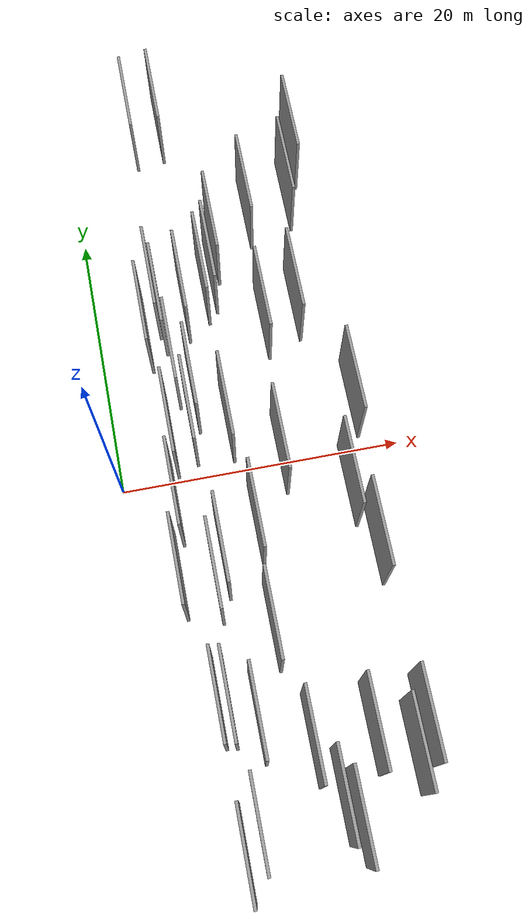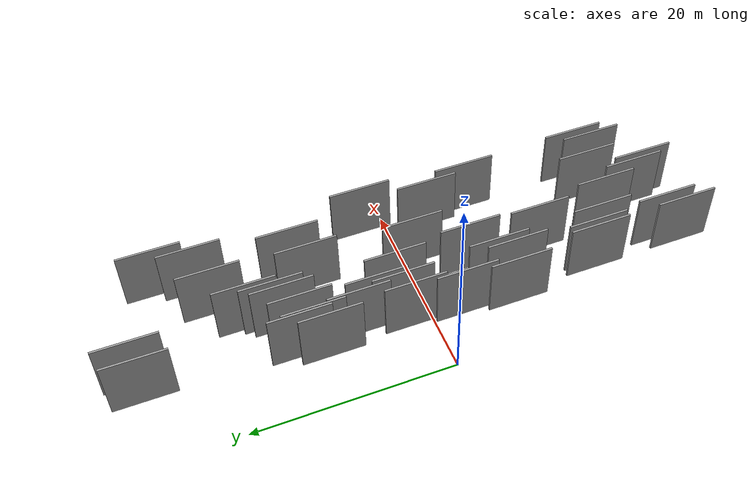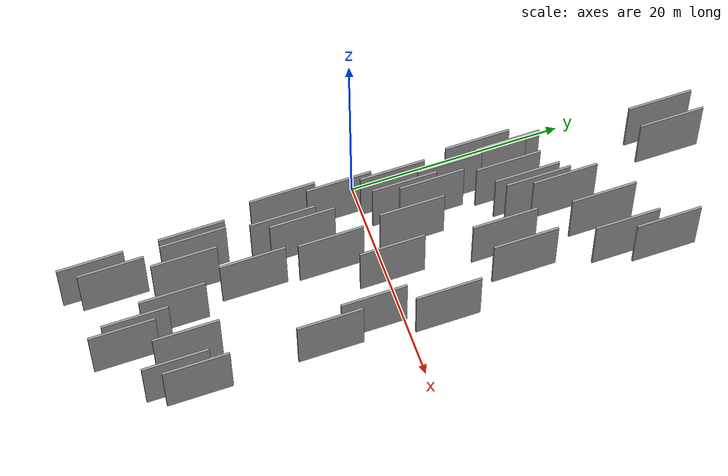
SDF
<sdf version="1.6">
 <world name="default">
  <scene>
   <sky><clouds><speed>12</speed></clouds></sky>
   <ambient>0.4 0.4 0.4 1</ambient>
   <background>0.7 0.7 0.7 1</background>
   <shadows>1</shadows>
  </scene>
  <gravity>0 0 -9.8066</gravity>
  <magnetic_field>6e-06 2.3e-05 -4.2e-05</magnetic_field>
  <physics default="0" name="default_physics" type="ode">
   <ode>
    <solver>
     <type>quick</type>
     <iters>10</iters>
     <sor>1.0</sor>
     <use_dynamic_moi_rescaling>0</use_dynamic_moi_rescaling>
    </solver>
    <constraints>
     <cfm>0</cfm>
     <erp>0.2</erp>
     <contact_max_correcting_vel>100</contact_max_correcting_vel>
     <contact_surface_layer>0.001</contact_surface_layer>
    </constraints>
   </ode>
   <max_step_size>0.004</max_step_size>
   <real_time_factor>1</real_time_factor>
   <real_time_update_rate>250</real_time_update_rate>
  </physics>
  <light name="sun" type="directional">
   <pose>0 0 10 0 0 0</pose>
   <diffuse>0.8 0.8 0.8 1</diffuse>
   <specular>0.2 0.2 0.2 1</specular>
   <attenuation>
    <range>1000</range>
    <constant>0.9</constant>
    <linear>0.01</linear>
    <quadratic>0.001</quadratic>
   </attenuation>
   <direction>-0.5 0.1 -0.9</direction>
  </light>
  <model name="grey_wall_1">
   <static>1</static>
   <pose>9.5216 16.7080 2.5 0.000000 0.000000 1.570796</pose>
   <link name="link">
    <pose>0 0 3.00 0 0 0</pose>
    <collision name="collision"><geometry><box><size>6.00 0.2 6.00</size></box></geometry></collision>
    <visual name="visual">
     <cast_shadows>0</cast_shadows>
     <geometry><box><size>6.00 0.2 6.00</size></box></geometry>
     <material>
      <script>
       <uri>model://grey_wall/materials/scripts</uri>
       <uri>model://grey_wall/materials/textures</uri>
       <name>vrc/grey_wall</name>
      </script>
     </material>
    </visual>
   </link>
  </model>
  <model name="grey_wall_2">
   <static>1</static>
   <pose>6.0941 -6.5864 2.5 0.000000 0.000000 1.570796</pose>
   <link name="link">
    <pose>0 0 3.00 0 0 0</pose>
    <collision name="collision"><geometry><box><size>6.00 0.2 6.00</size></box></geometry></collision>
    <visual name="visual">
     <cast_shadows>0</cast_shadows>
     <geometry><box><size>6.00 0.2 6.00</size></box></geometry>
     <material>
      <script>
       <uri>model://grey_wall/materials/scripts</uri>
       <uri>model://grey_wall/materials/textures</uri>
       <name>vrc/grey_wall</name>
      </script>
     </material>
    </visual>
   </link>
  </model>
  <model name="grey_wall_3">
   <static>1</static>
   <pose>15.6950 -21.0629 2.5 0.000000 0.000000 1.570796</pose>
   <link name="link">
    <pose>0 0 3.00 0 0 0</pose>
    <collision name="collision"><geometry><box><size>6.00 0.2 6.00</size></box></geometry></collision>
    <visual name="visual">
     <cast_shadows>0</cast_shadows>
     <geometry><box><size>6.00 0.2 6.00</size></box></geometry>
     <material>
      <script>
       <uri>model://grey_wall/materials/scripts</uri>
       <uri>model://grey_wall/materials/textures</uri>
       <name>vrc/grey_wall</name>
      </script>
     </material>
    </visual>
   </link>
  </model>
  <model name="grey_wall_4">
   <static>1</static>
   <pose>3.6308 10.6178 2.5 0.000000 0.000000 1.570796</pose>
   <link name="link">
    <pose>0 0 3.00 0 0 0</pose>
    <collision name="collision"><geometry><box><size>6.00 0.2 6.00</size></box></geometry></collision>
    <visual name="visual">
     <cast_shadows>0</cast_shadows>
     <geometry><box><size>6.00 0.2 6.00</size></box></geometry>
     <material>
      <script>
       <uri>model://grey_wall/materials/scripts</uri>
       <uri>model://grey_wall/materials/textures</uri>
       <name>vrc/grey_wall</name>
      </script>
     </material>
    </visual>
   </link>
  </model>
  <model name="grey_wall_5">
   <static>1</static>
   <pose>7.1737 27.8074 2.5 0.000000 0.000000 1.570796</pose>
   <link name="link">
    <pose>0 0 3.00 0 0 0</pose>
    <collision name="collision"><geometry><box><size>6.00 0.2 6.00</size></box></geometry></collision>
    <visual name="visual">
     <cast_shadows>0</cast_shadows>
     <geometry><box><size>6.00 0.2 6.00</size></box></geometry>
     <material>
      <script>
       <uri>model://grey_wall/materials/scripts</uri>
       <uri>model://grey_wall/materials/textures</uri>
       <name>vrc/grey_wall</name>
      </script>
     </material>
    </visual>
   </link>
  </model>
  <model name="grey_wall_6">
   <static>1</static>
   <pose>5.5750 3.0882 2.5 0.000000 0.000000 1.570796</pose>
   <link name="link">
    <pose>0 0 3.00 0 0 0</pose>
    <collision name="collision"><geometry><box><size>6.00 0.2 6.00</size></box></geometry></collision>
    <visual name="visual">
     <cast_shadows>0</cast_shadows>
     <geometry><box><size>6.00 0.2 6.00</size></box></geometry>
     <material>
      <script>
       <uri>model://grey_wall/materials/scripts</uri>
       <uri>model://grey_wall/materials/textures</uri>
       <name>vrc/grey_wall</name>
      </script>
     </material>
    </visual>
   </link>
  </model>
  <model name="grey_wall_7">
   <static>1</static>
   <pose>11.2782 -0.0539 2.5 0.000000 0.000000 1.570796</pose>
   <link name="link">
    <pose>0 0 3.00 0 0 0</pose>
    <collision name="collision"><geometry><box><size>6.00 0.2 6.00</size></box></geometry></collision>
    <visual name="visual">
     <cast_shadows>0</cast_shadows>
     <geometry><box><size>6.00 0.2 6.00</size></box></geometry>
     <material>
      <script>
       <uri>model://grey_wall/materials/scripts</uri>
       <uri>model://grey_wall/materials/textures</uri>
       <name>vrc/grey_wall</name>
      </script>
     </material>
    </visual>
   </link>
  </model>
  <model name="grey_wall_8">
   <static>1</static>
   <pose>9.4758 -19.4449 2.5 0.000000 0.000000 1.570796</pose>
   <link name="link">
    <pose>0 0 3.00 0 0 0</pose>
    <collision name="collision"><geometry><box><size>6.00 0.2 6.00</size></box></geometry></collision>
    <visual name="visual">
     <cast_shadows>0</cast_shadows>
     <geometry><box><size>6.00 0.2 6.00</size></box></geometry>
     <material>
      <script>
       <uri>model://grey_wall/materials/scripts</uri>
       <uri>model://grey_wall/materials/textures</uri>
       <name>vrc/grey_wall</name>
      </script>
     </material>
    </visual>
   </link>
  </model>
  <model name="grey_wall_9">
   <static>1</static>
   <pose>6.6198 12.4533 2.5 0.000000 0.000000 1.570796</pose>
   <link name="link">
    <pose>0 0 3.00 0 0 0</pose>
    <collision name="collision"><geometry><box><size>6.00 0.2 6.00</size></box></geometry></collision>
    <visual name="visual">
     <cast_shadows>0</cast_shadows>
     <geometry><box><size>6.00 0.2 6.00</size></box></geometry>
     <material>
      <script>
       <uri>model://grey_wall/materials/scripts</uri>
       <uri>model://grey_wall/materials/textures</uri>
       <name>vrc/grey_wall</name>
      </script>
     </material>
    </visual>
   </link>
  </model>
  <model name="grey_wall_10">
   <static>1</static>
   <pose>16.9489 3.0974 2.5 0.000000 0.000000 1.570796</pose>
   <link name="link">
    <pose>0 0 3.00 0 0 0</pose>
    <collision name="collision"><geometry><box><size>6.00 0.2 6.00</size></box></geometry></collision>
    <visual name="visual">
     <cast_shadows>0</cast_shadows>
     <geometry><box><size>6.00 0.2 6.00</size></box></geometry>
     <material>
      <script>
       <uri>model://grey_wall/materials/scripts</uri>
       <uri>model://grey_wall/materials/textures</uri>
       <name>vrc/grey_wall</name>
      </script>
     </material>
    </visual>
   </link>
  </model>
  <model name="grey_wall_11">
   <static>1</static>
   <pose>12.0115 10.1252 2.5 0.000000 0.000000 1.570796</pose>
   <link name="link">
    <pose>0 0 3.00 0 0 0</pose>
    <collision name="collision"><geometry><box><size>6.00 0.2 6.00</size></box></geometry></collision>
    <visual name="visual">
     <cast_shadows>0</cast_shadows>
     <geometry><box><size>6.00 0.2 6.00</size></box></geometry>
     <material>
      <script>
       <uri>model://grey_wall/materials/scripts</uri>
       <uri>model://grey_wall/materials/textures</uri>
       <name>vrc/grey_wall</name>
      </script>
     </material>
    </visual>
   </link>
  </model>
  <model name="grey_wall_12">
   <static>1</static>
   <pose>16.3393 -7.4817 2.5 0.000000 0.000000 1.570796</pose>
   <link name="link">
    <pose>0 0 3.00 0 0 0</pose>
    <collision name="collision"><geometry><box><size>6.00 0.2 6.00</size></box></geometry></collision>
    <visual name="visual">
     <cast_shadows>0</cast_shadows>
     <geometry><box><size>6.00 0.2 6.00</size></box></geometry>
     <material>
      <script>
       <uri>model://grey_wall/materials/scripts</uri>
       <uri>model://grey_wall/materials/textures</uri>
       <name>vrc/grey_wall</name>
      </script>
     </material>
    </visual>
   </link>
  </model>
  <model name="grey_wall_13">
   <static>1</static>
   <pose>4.1173 2.4645 2.5 0.000000 0.000000 1.570796</pose>
   <link name="link">
    <pose>0 0 3.00 0 0 0</pose>
    <collision name="collision"><geometry><box><size>6.00 0.2 6.00</size></box></geometry></collision>
    <visual name="visual">
     <cast_shadows>0</cast_shadows>
     <geometry><box><size>6.00 0.2 6.00</size></box></geometry>
     <material>
      <script>
       <uri>model://grey_wall/materials/scripts</uri>
       <uri>model://grey_wall/materials/textures</uri>
       <name>vrc/grey_wall</name>
      </script>
     </material>
    </visual>
   </link>
  </model>
  <model name="grey_wall_14">
   <static>1</static>
   <pose>12.4123 19.2364 2.5 0.000000 0.000000 1.570796</pose>
   <link name="link">
    <pose>0 0 3.00 0 0 0</pose>
    <collision name="collision"><geometry><box><size>6.00 0.2 6.00</size></box></geometry></collision>
    <visual name="visual">
     <cast_shadows>0</cast_shadows>
     <geometry><box><size>6.00 0.2 6.00</size></box></geometry>
     <material>
      <script>
       <uri>model://grey_wall/materials/scripts</uri>
       <uri>model://grey_wall/materials/textures</uri>
       <name>vrc/grey_wall</name>
      </script>
     </material>
    </visual>
   </link>
  </model>
  <model name="grey_wall_15">
   <static>1</static>
   <pose>11.3765 -24.5055 2.5 0.000000 0.000000 1.570796</pose>
   <link name="link">
    <pose>0 0 3.00 0 0 0</pose>
    <collision name="collision"><geometry><box><size>6.00 0.2 6.00</size></box></geometry></collision>
    <visual name="visual">
     <cast_shadows>0</cast_shadows>
     <geometry><box><size>6.00 0.2 6.00</size></box></geometry>
     <material>
      <script>
       <uri>model://grey_wall/materials/scripts</uri>
       <uri>model://grey_wall/materials/textures</uri>
       <name>vrc/grey_wall</name>
      </script>
     </material>
    </visual>
   </link>
  </model>
  <model name="grey_wall_16">
   <static>1</static>
   <pose>13.3270 -19.3992 2.5 0.000000 0.000000 1.570796</pose>
   <link name="link">
    <pose>0 0 3.00 0 0 0</pose>
    <collision name="collision"><geometry><box><size>6.00 0.2 6.00</size></box></geometry></collision>
    <visual name="visual">
     <cast_shadows>0</cast_shadows>
     <geometry><box><size>6.00 0.2 6.00</size></box></geometry>
     <material>
      <script>
       <uri>model://grey_wall/materials/scripts</uri>
       <uri>model://grey_wall/materials/textures</uri>
       <name>vrc/grey_wall</name>
      </script>
     </material>
    </visual>
   </link>
  </model>
  <model name="grey_wall_17">
   <static>1</static>
   <pose>4.1915 -25.2556 2.5 0.000000 0.000000 1.570796</pose>
   <link name="link">
    <pose>0 0 3.00 0 0 0</pose>
    <collision name="collision"><geometry><box><size>6.00 0.2 6.00</size></box></geometry></collision>
    <visual name="visual">
     <cast_shadows>0</cast_shadows>
     <geometry><box><size>6.00 0.2 6.00</size></box></geometry>
     <material>
      <script>
       <uri>model://grey_wall/materials/scripts</uri>
       <uri>model://grey_wall/materials/textures</uri>
       <name>vrc/grey_wall</name>
      </script>
     </material>
    </visual>
   </link>
  </model>
  <model name="grey_wall_18">
   <static>1</static>
   <pose>4.1256 -16.0557 2.5 0.000000 0.000000 1.570796</pose>
   <link name="link">
    <pose>0 0 3.00 0 0 0</pose>
    <collision name="collision"><geometry><box><size>6.00 0.2 6.00</size></box></geometry></collision>
    <visual name="visual">
     <cast_shadows>0</cast_shadows>
     <geometry><box><size>6.00 0.2 6.00</size></box></geometry>
     <material>
      <script>
       <uri>model://grey_wall/materials/scripts</uri>
       <uri>model://grey_wall/materials/textures</uri>
       <name>vrc/grey_wall</name>
      </script>
     </material>
    </visual>
   </link>
  </model>
  <model name="grey_wall_19">
   <static>1</static>
   <pose>8.4395 -11.8730 2.5 0.000000 0.000000 1.570796</pose>
   <link name="link">
    <pose>0 0 3.00 0 0 0</pose>
    <collision name="collision"><geometry><box><size>6.00 0.2 6.00</size></box></geometry></collision>
    <visual name="visual">
     <cast_shadows>0</cast_shadows>
     <geometry><box><size>6.00 0.2 6.00</size></box></geometry>
     <material>
      <script>
       <uri>model://grey_wall/materials/scripts</uri>
       <uri>model://grey_wall/materials/textures</uri>
       <name>vrc/grey_wall</name>
      </script>
     </material>
    </visual>
   </link>
  </model>
  <model name="grey_wall_20">
   <static>1</static>
   <pose>5.0960 7.4938 2.5 0.000000 0.000000 1.570796</pose>
   <link name="link">
    <pose>0 0 3.00 0 0 0</pose>
    <collision name="collision"><geometry><box><size>6.00 0.2 6.00</size></box></geometry></collision>
    <visual name="visual">
     <cast_shadows>0</cast_shadows>
     <geometry><box><size>6.00 0.2 6.00</size></box></geometry>
     <material>
      <script>
       <uri>model://grey_wall/materials/scripts</uri>
       <uri>model://grey_wall/materials/textures</uri>
       <name>vrc/grey_wall</name>
      </script>
     </material>
    </visual>
   </link>
  </model>
  <model name="grey_wall_21">
   <static>1</static>
   <pose>4.5917 13.1310 2.5 0.000000 0.000000 1.570796</pose>
   <link name="link">
    <pose>0 0 3.00 0 0 0</pose>
    <collision name="collision"><geometry><box><size>6.00 0.2 6.00</size></box></geometry></collision>
    <visual name="visual">
     <cast_shadows>0</cast_shadows>
     <geometry><box><size>6.00 0.2 6.00</size></box></geometry>
     <material>
      <script>
       <uri>model://grey_wall/materials/scripts</uri>
       <uri>model://grey_wall/materials/textures</uri>
       <name>vrc/grey_wall</name>
      </script>
     </material>
    </visual>
   </link>
  </model>
  <model name="grey_wall_22">
   <static>1</static>
   <pose>15.4603 -3.1970 2.5 0.000000 0.000000 1.570796</pose>
   <link name="link">
    <pose>0 0 3.00 0 0 0</pose>
    <collision name="collision"><geometry><box><size>6.00 0.2 6.00</size></box></geometry></collision>
    <visual name="visual">
     <cast_shadows>0</cast_shadows>
     <geometry><box><size>6.00 0.2 6.00</size></box></geometry>
     <material>
      <script>
       <uri>model://grey_wall/materials/scripts</uri>
       <uri>model://grey_wall/materials/textures</uri>
       <name>vrc/grey_wall</name>
      </script>
     </material>
    </visual>
   </link>
  </model>
  <model name="grey_wall_23">
   <static>1</static>
   <pose>8.7132 -4.8242 2.5 0.000000 0.000000 1.570796</pose>
   <link name="link">
    <pose>0 0 3.00 0 0 0</pose>
    <collision name="collision"><geometry><box><size>6.00 0.2 6.00</size></box></geometry></collision>
    <visual name="visual">
     <cast_shadows>0</cast_shadows>
     <geometry><box><size>6.00 0.2 6.00</size></box></geometry>
     <material>
      <script>
       <uri>model://grey_wall/materials/scripts</uri>
       <uri>model://grey_wall/materials/textures</uri>
       <name>vrc/grey_wall</name>
      </script>
     </material>
    </visual>
   </link>
  </model>
  <model name="grey_wall_24">
   <static>1</static>
   <pose>4.7884 -16.1540 2.5 0.000000 0.000000 1.570796</pose>
   <link name="link">
    <pose>0 0 3.00 0 0 0</pose>
    <collision name="collision"><geometry><box><size>6.00 0.2 6.00</size></box></geometry></collision>
    <visual name="visual">
     <cast_shadows>0</cast_shadows>
     <geometry><box><size>6.00 0.2 6.00</size></box></geometry>
     <material>
      <script>
       <uri>model://grey_wall/materials/scripts</uri>
       <uri>model://grey_wall/materials/textures</uri>
       <name>vrc/grey_wall</name>
      </script>
     </material>
    </visual>
   </link>
  </model>
  <model name="grey_wall_25">
   <static>1</static>
   <pose>5.3555 -8.1354 2.5 0.000000 0.000000 1.570796</pose>
   <link name="link">
    <pose>0 0 3.00 0 0 0</pose>
    <collision name="collision"><geometry><box><size>6.00 0.2 6.00</size></box></geometry></collision>
    <visual name="visual">
     <cast_shadows>0</cast_shadows>
     <geometry><box><size>6.00 0.2 6.00</size></box></geometry>
     <material>
      <script>
       <uri>model://grey_wall/materials/scripts</uri>
       <uri>model://grey_wall/materials/textures</uri>
       <name>vrc/grey_wall</name>
      </script>
     </material>
    </visual>
   </link>
  </model>
  <model name="grey_wall_26">
   <static>1</static>
   <pose>8.1038 2.8939 2.5 0.000000 0.000000 1.570796</pose>
   <link name="link">
    <pose>0 0 3.00 0 0 0</pose>
    <collision name="collision"><geometry><box><size>6.00 0.2 6.00</size></box></geometry></collision>
    <visual name="visual">
     <cast_shadows>0</cast_shadows>
     <geometry><box><size>6.00 0.2 6.00</size></box></geometry>
     <material>
      <script>
       <uri>model://grey_wall/materials/scripts</uri>
       <uri>model://grey_wall/materials/textures</uri>
       <name>vrc/grey_wall</name>
      </script>
     </material>
    </visual>
   </link>
  </model>
  <model name="grey_wall_27">
   <static>1</static>
   <pose>4.8388 11.7817 2.5 0.000000 0.000000 1.570796</pose>
   <link name="link">
    <pose>0 0 3.00 0 0 0</pose>
    <collision name="collision"><geometry><box><size>6.00 0.2 6.00</size></box></geometry></collision>
    <visual name="visual">
     <cast_shadows>0</cast_shadows>
     <geometry><box><size>6.00 0.2 6.00</size></box></geometry>
     <material>
      <script>
       <uri>model://grey_wall/materials/scripts</uri>
       <uri>model://grey_wall/materials/textures</uri>
       <name>vrc/grey_wall</name>
      </script>
     </material>
    </visual>
   </link>
  </model>
  <model name="grey_wall_28">
   <static>1</static>
   <pose>8.9540 14.4108 2.5 0.000000 0.000000 1.570796</pose>
   <link name="link">
    <pose>0 0 3.00 0 0 0</pose>
    <collision name="collision"><geometry><box><size>6.00 0.2 6.00</size></box></geometry></collision>
    <visual name="visual">
     <cast_shadows>0</cast_shadows>
     <geometry><box><size>6.00 0.2 6.00</size></box></geometry>
     <material>
      <script>
       <uri>model://grey_wall/materials/scripts</uri>
       <uri>model://grey_wall/materials/textures</uri>
       <name>vrc/grey_wall</name>
      </script>
     </material>
    </visual>
   </link>
  </model>
  <model name="grey_wall_29">
   <static>1</static>
   <pose>6.4015 -17.4471 2.5 0.000000 0.000000 1.570796</pose>
   <link name="link">
    <pose>0 0 3.00 0 0 0</pose>
    <collision name="collision"><geometry><box><size>6.00 0.2 6.00</size></box></geometry></collision>
    <visual name="visual">
     <cast_shadows>0</cast_shadows>
     <geometry><box><size>6.00 0.2 6.00</size></box></geometry>
     <material>
      <script>
       <uri>model://grey_wall/materials/scripts</uri>
       <uri>model://grey_wall/materials/textures</uri>
       <name>vrc/grey_wall</name>
      </script>
     </material>
    </visual>
   </link>
  </model>
  <model name="grey_wall_30">
   <static>1</static>
   <pose>5.1383 27.5080 2.5 0.000000 0.000000 1.570796</pose>
   <link name="link">
    <pose>0 0 3.00 0 0 0</pose>
    <collision name="collision"><geometry><box><size>6.00 0.2 6.00</size></box></geometry></collision>
    <visual name="visual">
     <cast_shadows>0</cast_shadows>
     <geometry><box><size>6.00 0.2 6.00</size></box></geometry>
     <material>
      <script>
       <uri>model://grey_wall/materials/scripts</uri>
       <uri>model://grey_wall/materials/textures</uri>
       <name>vrc/grey_wall</name>
      </script>
     </material>
    </visual>
   </link>
  </model>
  <model name="grey_wall_31">
   <static>1</static>
   <pose>16.6461 23.6377 2.5 0.000000 0.000000 1.570796</pose>
   <link name="link">
    <pose>0 0 3.00 0 0 0</pose>
    <collision name="collision"><geometry><box><size>6.00 0.2 6.00</size></box></geometry></collision>
    <visual name="visual">
     <cast_shadows>0</cast_shadows>
     <geometry><box><size>6.00 0.2 6.00</size></box></geometry>
     <material>
      <script>
       <uri>model://grey_wall/materials/scripts</uri>
       <uri>model://grey_wall/materials/textures</uri>
       <name>vrc/grey_wall</name>
      </script>
     </material>
    </visual>
   </link>
  </model>
  <model name="grey_wall_32">
   <static>1</static>
   <pose>8.2579 13.6173 2.5 0.000000 0.000000 1.570796</pose>
   <link name="link">
    <pose>0 0 3.00 0 0 0</pose>
    <collision name="collision"><geometry><box><size>6.00 0.2 6.00</size></box></geometry></collision>
    <visual name="visual">
     <cast_shadows>0</cast_shadows>
     <geometry><box><size>6.00 0.2 6.00</size></box></geometry>
     <material>
      <script>
       <uri>model://grey_wall/materials/scripts</uri>
       <uri>model://grey_wall/materials/textures</uri>
       <name>vrc/grey_wall</name>
      </script>
     </material>
    </visual>
   </link>
  </model>
  <model name="grey_wall_33">
   <static>1</static>
   <pose>15.6154 20.1854 2.5 0.000000 0.000000 1.570796</pose>
   <link name="link">
    <pose>0 0 3.00 0 0 0</pose>
    <collision name="collision"><geometry><box><size>6.00 0.2 6.00</size></box></geometry></collision>
    <visual name="visual">
     <cast_shadows>0</cast_shadows>
     <geometry><box><size>6.00 0.2 6.00</size></box></geometry>
     <material>
      <script>
       <uri>model://grey_wall/materials/scripts</uri>
       <uri>model://grey_wall/materials/textures</uri>
       <name>vrc/grey_wall</name>
      </script>
     </material>
    </visual>
   </link>
  </model>
  <model name="grey_wall_34">
   <static>1</static>
   <pose>16.6260 -19.5157 2.5 0.000000 0.000000 1.570796</pose>
   <link name="link">
    <pose>0 0 3.00 0 0 0</pose>
    <collision name="collision"><geometry><box><size>6.00 0.2 6.00</size></box></geometry></collision>
    <visual name="visual">
     <cast_shadows>0</cast_shadows>
     <geometry><box><size>6.00 0.2 6.00</size></box></geometry>
     <material>
      <script>
       <uri>model://grey_wall/materials/scripts</uri>
       <uri>model://grey_wall/materials/textures</uri>
       <name>vrc/grey_wall</name>
      </script>
     </material>
    </visual>
   </link>
  </model>
  <model name="grey_wall_35">
   <static>1</static>
   <pose>6.1271 5.4344 2.5 0.000000 0.000000 1.570796</pose>
   <link name="link">
    <pose>0 0 3.00 0 0 0</pose>
    <collision name="collision"><geometry><box><size>6.00 0.2 6.00</size></box></geometry></collision>
    <visual name="visual">
     <cast_shadows>0</cast_shadows>
     <geometry><box><size>6.00 0.2 6.00</size></box></geometry>
     <material>
      <script>
       <uri>model://grey_wall/materials/scripts</uri>
       <uri>model://grey_wall/materials/textures</uri>
       <name>vrc/grey_wall</name>
      </script>
     </material>
    </visual>
   </link>
  </model>
  <model name="grey_wall_36">
   <static>1</static>
   <pose>3.0910 -7.4250 2.5 0.000000 0.000000 1.570796</pose>
   <link name="link">
    <pose>0 0 3.00 0 0 0</pose>
    <collision name="collision"><geometry><box><size>6.00 0.2 6.00</size></box></geometry></collision>
    <visual name="visual">
     <cast_shadows>0</cast_shadows>
     <geometry><box><size>6.00 0.2 6.00</size></box></geometry>
     <material>
      <script>
       <uri>model://grey_wall/materials/scripts</uri>
       <uri>model://grey_wall/materials/textures</uri>
       <name>vrc/grey_wall</name>
      </script>
     </material>
    </visual>
   </link>
  </model>
  <model name="grey_wall_37">
   <static>1</static>
   <pose>5.2783 -23.7277 2.5 0.000000 0.000000 1.570796</pose>
   <link name="link">
    <pose>0 0 3.00 0 0 0</pose>
    <collision name="collision"><geometry><box><size>6.00 0.2 6.00</size></box></geometry></collision>
    <visual name="visual">
     <cast_shadows>0</cast_shadows>
     <geometry><box><size>6.00 0.2 6.00</size></box></geometry>
     <material>
      <script>
       <uri>model://grey_wall/materials/scripts</uri>
       <uri>model://grey_wall/materials/textures</uri>
       <name>vrc/grey_wall</name>
      </script>
     </material>
    </visual>
   </link>
  </model>
  <model name="grey_wall_38">
   <static>1</static>
   <pose>10.6507 -23.1259 2.5 0.000000 0.000000 1.570796</pose>
   <link name="link">
    <pose>0 0 3.00 0 0 0</pose>
    <collision name="collision"><geometry><box><size>6.00 0.2 6.00</size></box></geometry></collision>
    <visual name="visual">
     <cast_shadows>0</cast_shadows>
     <geometry><box><size>6.00 0.2 6.00</size></box></geometry>
     <material>
      <script>
       <uri>model://grey_wall/materials/scripts</uri>
       <uri>model://grey_wall/materials/textures</uri>
       <name>vrc/grey_wall</name>
      </script>
     </material>
    </visual>
   </link>
  </model>
  <model name="grey_wall_39">
   <static>1</static>
   <pose>3.6716 -2.3843 2.5 0.000000 0.000000 1.570796</pose>
   <link name="link">
    <pose>0 0 3.00 0 0 0</pose>
    <collision name="collision"><geometry><box><size>6.00 0.2 6.00</size></box></geometry></collision>
    <visual name="visual">
     <cast_shadows>0</cast_shadows>
     <geometry><box><size>6.00 0.2 6.00</size></box></geometry>
     <material>
      <script>
       <uri>model://grey_wall/materials/scripts</uri>
       <uri>model://grey_wall/materials/textures</uri>
       <name>vrc/grey_wall</name>
      </script>
     </material>
    </visual>
   </link>
  </model>
  <model name="grey_wall_40">
   <static>1</static>
   <pose>14.4734 11.1357 2.5 0.000000 0.000000 1.570796</pose>
   <link name="link">
    <pose>0 0 3.00 0 0 0</pose>
    <collision name="collision"><geometry><box><size>6.00 0.2 6.00</size></box></geometry></collision>
    <visual name="visual">
     <cast_shadows>0</cast_shadows>
     <geometry><box><size>6.00 0.2 6.00</size></box></geometry>
     <material>
      <script>
       <uri>model://grey_wall/materials/scripts</uri>
       <uri>model://grey_wall/materials/textures</uri>
       <name>vrc/grey_wall</name>
      </script>
     </material>
    </visual>
   </link>
  </model>
 </world>
</sdf>
